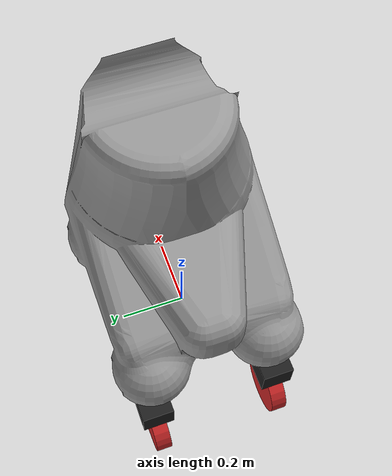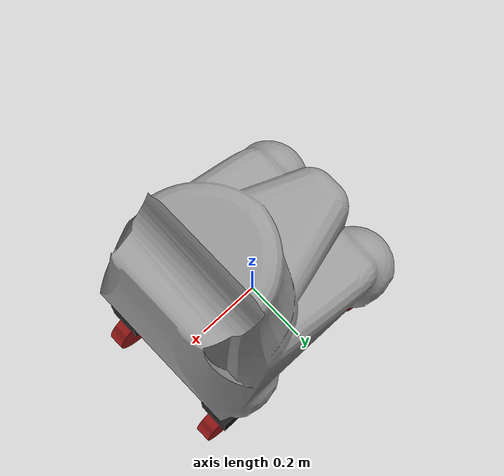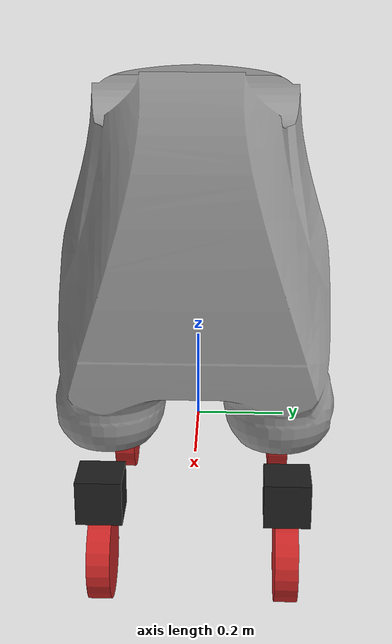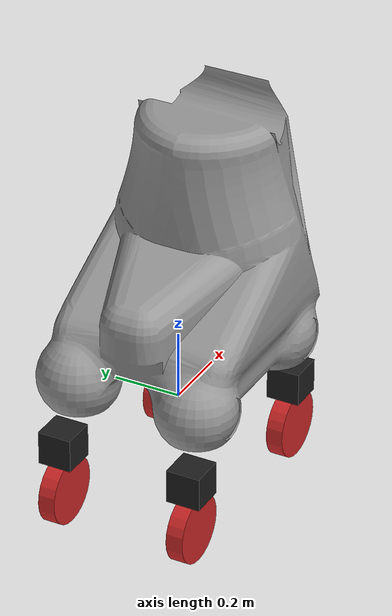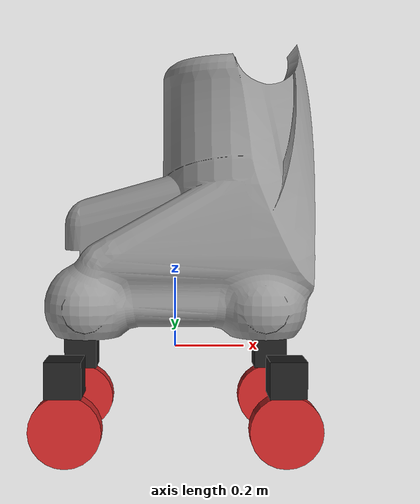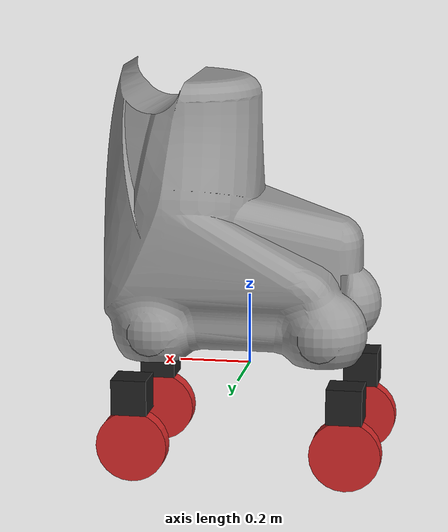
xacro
<?xml version="1.0"?>
<robot name="cob3_platform"
	xmlns:sensor="http://playerstage.sourceforge.net/gazebo/xmlschema/#sensor"
	xmlns:controller="http://playerstage.sourceforge.net/gazebo/xmlschema/#controller"
	xmlns:interface="http://playerstage.sourceforge.net/gazebo/xmlschema/#interface">

	<!-- include gazebo defs-->
	<include filename="$(find cob3_defs)/ros/defs/gazebo.urdf" />

	<!-- create joint to world -->
	<!-- include torso defs-->
	<include filename="$(find cob3_defs)/ros/defs/platform.urdf" />

</robot>

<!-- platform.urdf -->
<robot name="torso"
	xmlns:sensor="http://playerstage.sourceforge.net/gazebo/xmlschema/#sensor"
	xmlns:controller="http://playerstage.sourceforge.net/gazebo/xmlschema/#controller"
	xmlns:interface="http://playerstage.sourceforge.net/gazebo/xmlschema/#interface">

	<!-- add links-->

	<!-- platform -->
	<link name="link_platform">
		<inertial>
			<origin xyz="0 0 0" rpy="0 0 0"/>
			<mass value="50"/>
			<inertia ixx="1"  ixy="0"  ixz="0" iyy="1" iyz="0" izz="1" />
		</inertial>
		<visual>
			<origin xyz="0 0 0.05" rpy="0 0 0" />
			<geometry>
				<mesh filename="package://cob3_defs/common/files/meshes/platform.stl" />
			</geometry>
		</visual>
		<collision>
			<origin xyz="0 0 0.05" rpy="0 0 0" />
			<geometry>
				<mesh filename="package://cob3_defs/common/files/meshes/platform.stl" />
			</geometry>
		</collision>
	</link>

	<!-- wheel front left -->
	<link name="link_steerFL">
		<inertial>
			<origin xyz="0 0 0" rpy="0 0 0"/>
			<mass value="3"/>
			<inertia ixx="1"  ixy="0"  ixz="0" iyy="1" iyz="0" izz="1" />
		</inertial>
		<visual>
			<origin xyz="0 0 -0.05" rpy="0 0 0" />
			<geometry>
		        <box size="0.1 0.1 0.1"/>
			</geometry>
		</visual>
		<collision>
			<origin xyz="0 0 -0.05" rpy="0 0 0" />
			<geometry>
		        <box size="0.1 0.1 0.1"/>
			</geometry>
		</collision>
	</link>

	<link name="link_wheelFL">
		<inertial>
			<origin xyz="0 0 0" rpy="0 0 0"/>
			<mass value="1"/>
			<inertia ixx="1"  ixy="0"  ixz="0" iyy="1" iyz="0" izz="1" />
		</inertial>
		<visual>
			<origin xyz="0 0 0.0025" rpy="1.57 0 0" />
			<geometry>
					<cylinder radius="0.1" length="0.05"/>
			</geometry>
		</visual>
		<collision>
			<origin xyz="0 0 0.0025" rpy="1.57 0 0" />
			<geometry>
		        <cylinder radius="0.1" length="0.05"/>
			</geometry>
		</collision>
	</link>

	<!-- wheel front right -->
	<link name="link_steerFR">
		<inertial>
			<origin xyz="0 0 0" rpy="0 0 0"/>
			<mass value="3"/>
			<inertia ixx="1"  ixy="0"  ixz="0" iyy="1" iyz="0" izz="1" />
		</inertial>
		<visual>
			<origin xyz="0 0 -0.05" rpy="0 0 0" />
			<geometry>
		        <box size="0.1 0.1 0.1"/>
			</geometry>
		</visual>
		<collision>
			<origin xyz="0 0 -0.05" rpy="0 0 0" />
			<geometry>
		        <box size="0.1 0.1 0.1"/>
			</geometry>
		</collision>
	</link>

	<link name="link_wheelFR">
		<inertial>
			<origin xyz="0 0 0" rpy="0 0 0"/>
			<mass value="1"/>
			<inertia ixx="1"  ixy="0"  ixz="0" iyy="1" iyz="0" izz="1" />
		</inertial>
		<visual>
			<origin xyz="0 0 0.0025" rpy="1.57 0 0" />
			<geometry>
					<cylinder radius="0.1" length="0.05"/>
			</geometry>
		</visual>
		<collision>
			<origin xyz="0 0 0.0025" rpy="1.57 0 0" />
			<geometry>
		        <cylinder radius="0.1" length="0.05"/>
			</geometry>
		</collision>
	</link>

	<!-- wheel rear left -->
	<link name="link_steerRL">
		<inertial>
			<origin xyz="0 0 0" rpy="0 0 0"/>
			<mass value="3"/>
			<inertia ixx="1"  ixy="0"  ixz="0" iyy="1" iyz="0" izz="1" />
		</inertial>
		<visual>
			<origin xyz="0 0 -0.05" rpy="0 0 0" />
			<geometry>
		        <box size="0.1 0.1 0.1"/>
			</geometry>
		</visual>
		<collision>
			<origin xyz="0 0 -0.05" rpy="0 0 0" />
			<geometry>
		        <box size="0.1 0.1 0.1"/>
			</geometry>
		</collision>
	</link>

	<link name="link_wheelRL">
		<inertial>
			<origin xyz="0 0 0" rpy="0 0 0"/>
			<mass value="1"/>
			<inertia ixx="1"  ixy="0"  ixz="0" iyy="1" iyz="0" izz="1" />
		</inertial>
		<visual>
			<origin xyz="0 0 0.0025" rpy="1.57 0 0" />
			<geometry>
					<cylinder radius="0.1" length="0.05"/>
			</geometry>
		</visual>
		<collision>
			<origin xyz="0 0 0.0025" rpy="1.57 0 0" />
			<geometry>
		        <cylinder radius="0.1" length="0.05"/>
			</geometry>
		</collision>
	</link>

	<!-- wheel rear right -->
	<link name="link_steerRR">
		<inertial>
			<origin xyz="0 0 0" rpy="0 0 0"/>
			<mass value="3"/>
			<inertia ixx="1"  ixy="0"  ixz="0" iyy="1" iyz="0" izz="1" />
		</inertial>
		<visual>
			<origin xyz="0 0 -0.05" rpy="0 0 0" />
			<geometry>
		        <box size="0.1 0.1 0.1"/>
			</geometry>
		</visual>
		<collision>
			<origin xyz="0 0 -0.05" rpy="0 0 0" />
			<geometry>
		        <box size="0.1 0.1 0.1"/>
			</geometry>
		</collision>
	</link>

	<link name="link_wheelRR">
		<inertial>
			<origin xyz="0 0 0" rpy="0 0 0"/>
			<mass value="1"/>
			<inertia ixx="1"  ixy="0"  ixz="0" iyy="1" iyz="0" izz="1" />
		</inertial>
		<visual>
			<origin xyz="0 0 0.0025" rpy="1.57 0 0" />
			<geometry>
					<cylinder radius="0.1" length="0.05"/>
			</geometry>
		</visual>
		<collision>
			<origin xyz="0 0 0.0025" rpy="1.57 0 0" />
			<geometry>
		        <cylinder radius="0.1" length="0.05"/>
			</geometry>
		</collision>
	</link>

	<!-- define colors for links -->
	<gazebo reference="link_platform">
		<material>Gazebo/Grey</material>
		<turnGravityOff>false</turnGravityOff>
	</gazebo>

	<gazebo reference="link_steerFL">
		<material>Gazebo/Black</material>
		<turnGravityOff>false</turnGravityOff>
	</gazebo>

	<gazebo reference="link_wheelFL">
		<material>Gazebo/Red</material>
		<turnGravityOff>false</turnGravityOff>
	</gazebo>

	<gazebo reference="link_steerFR">
		<material>Gazebo/Black</material>
		<turnGravityOff>false</turnGravityOff>
	</gazebo>

	<gazebo reference="link_wheelFR">
		<material>Gazebo/Red</material>
		<turnGravityOff>false</turnGravityOff>
	</gazebo>

	<gazebo reference="link_steerRL">
		<material>Gazebo/Black</material>
		<turnGravityOff>false</turnGravityOff>
	</gazebo>

	<gazebo reference="link_wheelRL">
		<material>Gazebo/Red</material>
		<turnGravityOff>false</turnGravityOff>
	</gazebo>

	<gazebo reference="link_steerRR">
		<material>Gazebo/Black</material>
		<turnGravityOff>false</turnGravityOff>
	</gazebo>

	<gazebo reference="link_wheelRR">
		<material>Gazebo/Red</material>
		<turnGravityOff>false</turnGravityOff>
	</gazebo>

	<!-- add joints -->

	<!-- wheel front left -->
	<joint name="joint_platform_steerFL" type="continuous">
		<origin xyz="0.3 0.2 0" rpy="0 0 0" />
		<parent link="link_platform"/>
		<child link="link_steerFL"/>
		<axis xyz="0 0 1" />
	    <calibration reference_position="0.0"/>
		<limit effort="100" lower="-1" upper="1" velocity="5"/>
	</joint>

	<joint name="joint_steerFL_wheelFL" type="continuous">
		<origin xyz="0 0 -0.2" rpy="0 0 0" />
		<parent link="link_steerFL"/>
		<child link="link_wheelFL"/>
		<axis xyz="0 1 0" />
	    <calibration reference_position="0.0"/>
		<limit effort="100" lower="-1" upper="1" velocity="5"/>
	</joint>

	<!-- wheel front right -->
	<joint name="joint_platform_steerFR" type="continuous">
		<origin xyz="0.3 -0.2 0" rpy="0 0 0" />
		<parent link="link_platform"/>
		<child link="link_steerFR"/>
		<axis xyz="0 0 1" />
	    <calibration reference_position="0.0"/>
		<limit effort="100" lower="-1" upper="1" velocity="5"/>
	</joint>

	<joint name="joint_steerFR_wheelFR" type="continuous">
		<origin xyz="0 0 -0.2" rpy="0 0 0" />
		<parent link="link_steerFR"/>
		<child link="link_wheelFR"/>
		<axis xyz="0 1 0" />
	    <calibration reference_position="0.0"/>
		<limit effort="100" lower="-1" upper="1" velocity="5"/>
	</joint>

	<!-- wheel rear left -->
	<joint name="joint_platform_steerRL" type="continuous">
		<origin xyz="-0.3 0.2 0" rpy="0 0 0" />
		<parent link="link_platform"/>
		<child link="link_steerRL"/>
		<axis xyz="0 0 1" />
	    <calibration reference_position="0.0"/>
		<limit effort="100" lower="-1" upper="1" velocity="5"/>
	</joint>

	<joint name="joint_steerRL_wheelRL" type="continuous">
		<origin xyz="0 0 -0.2" rpy="0 0 0" />
		<parent link="link_steerRL"/>
		<child link="link_wheelRL"/>
		<axis xyz="0 1 0" />
	    <calibration reference_position="0.0"/>
		<limit effort="100" lower="-1" upper="1" velocity="5"/>
	</joint>

	<!-- wheel rear right -->
	<joint name="joint_platform_steerRR" type="continuous">
		<origin xyz="-0.3 -0.2 0" rpy="0 0 0" />
		<parent link="link_platform"/>
		<child link="link_steerRR"/>
		<axis xyz="0 0 1" />
	    <calibration reference_position="0.0"/>
		<limit effort="100" lower="-1" upper="1" velocity="5"/>
	</joint>

	<joint name="joint_steerRR_wheelRR" type="continuous">
		<origin xyz="0 0 -0.2" rpy="0 0 0" />
		<parent link="link_steerRR"/>
		<child link="link_wheelRR"/>
		<axis xyz="0 1 0" />
	    <calibration reference_position="0.0"/>
		<limit effort="100" lower="-1" upper="1" velocity="5"/>
	</joint>

	<!-- add transmissions -->

	<!-- wheel front left -->
	<transmission name="trans_platform_steerFL" type="SimpleTransmission">
		<actuator name="motor_platform_steerFL"/>
		<joint name="joint_platform_steerFL"/>
		<mechanicalReduction>1</mechanicalReduction>
	</transmission>

	<transmission name="trans_steerFL_wheelFL" type="SimpleTransmission">
		<actuator name="motor_steerFL_wheelFL"/>
		<joint name="joint_steerFL_wheelFL"/>
		<mechanicalReduction>1</mechanicalReduction>
	</transmission>

	<!-- wheel front right -->
	<transmission name="trans_platform_steerFR" type="SimpleTransmission">
		<actuator name="motor_platform_steerFR"/>
		<joint name="joint_platform_steerFR"/>
		<mechanicalReduction>1</mechanicalReduction>
	</transmission>

	<transmission name="trans_steerFR_wheelFR" type="SimpleTransmission">
		<actuator name="motor_steerFR_wheelFR"/>
		<joint name="joint_steerFR_wheelFR"/>
		<mechanicalReduction>1</mechanicalReduction>
	</transmission>

	<!-- wheel rear left -->
	<transmission name="trans_platform_steerRL" type="SimpleTransmission">
		<actuator name="motor_platform_steerRL"/>
		<joint name="joint_platform_steerRL"/>
		<mechanicalReduction>1</mechanicalReduction>
	</transmission>

	<transmission name="trans_steerRL_wheelRL" type="SimpleTransmission">
		<actuator name="motor_steerRL_wheelRL"/>
		<joint name="joint_steerRL_wheelRL"/>
		<mechanicalReduction>1</mechanicalReduction>
	</transmission>

	<!-- wheel rear right -->
	<transmission name="trans_platform_steerRR" type="SimpleTransmission">
		<actuator name="motor_platform_steerRR"/>
		<joint name="joint_platform_steerRR"/>
		<mechanicalReduction>1</mechanicalReduction>
	</transmission>

	<transmission name="trans_steerRR_wheelRR" type="SimpleTransmission">
		<actuator name="motor_steerRR_wheelRR"/>
		<joint name="joint_steerRR_wheelRR"/>
		<mechanicalReduction>1</mechanicalReduction>
	</transmission>

</robot>
